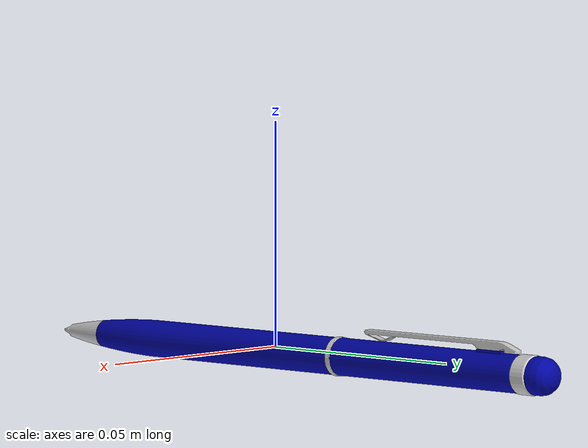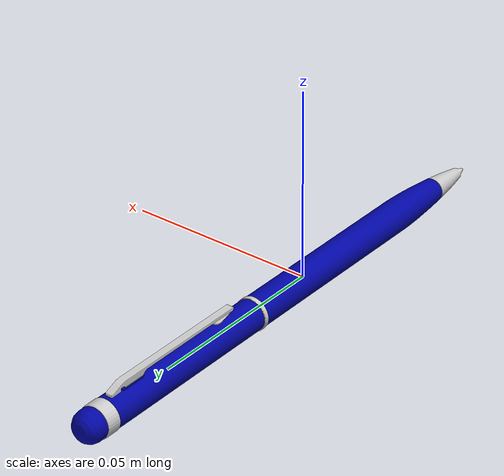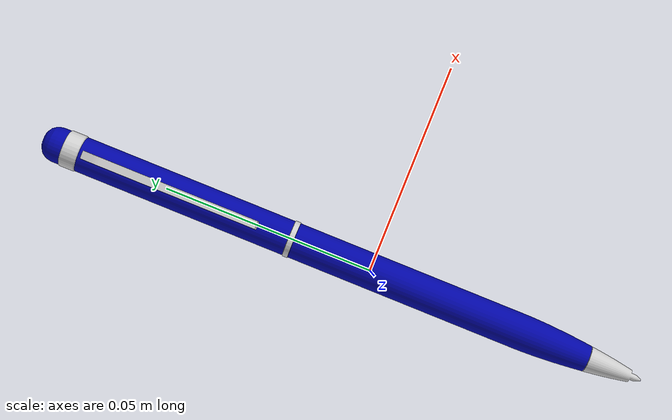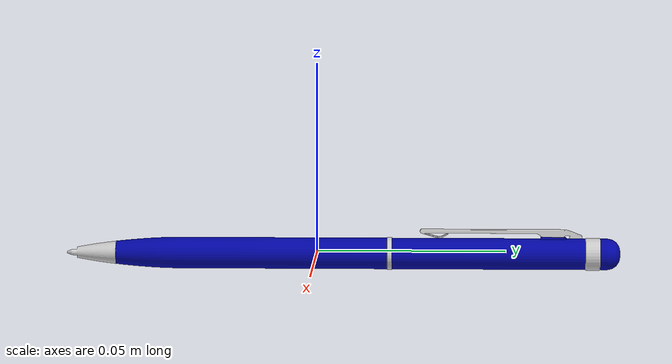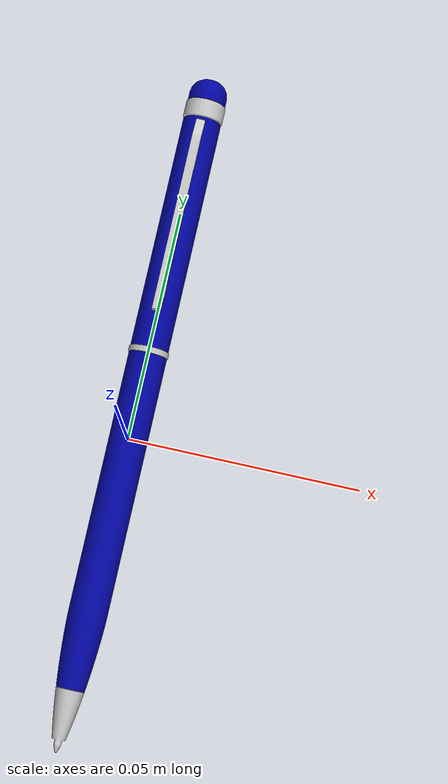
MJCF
<mujoco model="pen_a">
  <default>
    <default class="visual">
      <geom group="1" type="mesh" contype="0" conaffinity="0"/>
    </default>
    <default class="collision">
      <geom group="0" type="mesh" solref="0.01 1" solimp="0.99 0.99 0.01" margin="0.001" priority="1" friction="15 15 0.0001"/>
    </default>
  </default>
  <asset>
    <material name="METAL_CHROME" specular="0.5" shininess="0.5" rgba="0.800000 0.800000 0.800000 1.000000"/>
    <material name="metalic_blue.001" specular="0.5" shininess="0.5" rgba="0.000000 0.017088 0.645726 1.000000"/>
    <mesh file="pen_a_0.obj" name="pen_a_0"/>
    <mesh file="pen_a_1.obj" name="pen_a_1"/>
    <mesh file="pen_a_collision_0.obj" name="pen_a_collision_0"/>
  </asset>
  <worldbody>
    <body name="base" pos="0 0 0">
      <body name="object">
      <geom mesh="pen_a_0" material="metalic_blue.001" class="visual"/>
      <geom mesh="pen_a_1" material="METAL_CHROME" class="visual"/>
      <geom mesh="pen_a_collision_0" rgba="1 0 0 0" class="collision"/>
      </body>
    </body>
  </worldbody>
</mujoco>
